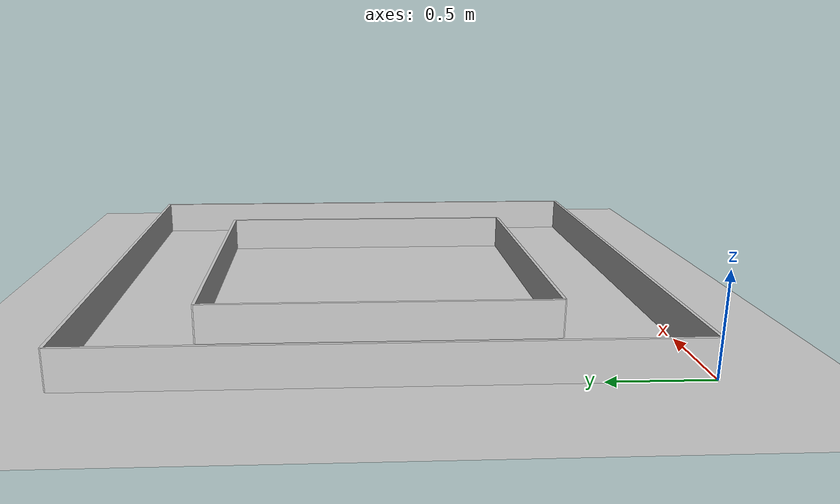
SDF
<?xml version="1.0"?>
<sdf version="1.6">
  <world name="default">
    <!-- Include the ground plane -->
    <include>
      <uri>model://ground_plane</uri>
    </include>

    <!-- Lighting -->
    <include>
      <uri>model://sun</uri>
    </include>

    <scene>
      <shadows>false</shadows>
    </scene>

    <gui fullscreen='0'>
      <camera name='user_camera'>
        <pose frame=''>0.319654 -0.235002 9.29441 0 1.5138 0.009599</pose>
        <view_controller>orbit</view_controller>
        <projection_type>perspective</projection_type>
      </camera>
    </gui>

    <physics type="ode">
      <real_time_update_rate>1000.0</real_time_update_rate>
      <max_step_size>0.001</max_step_size>
      <real_time_factor>1</real_time_factor>
      <ode>
        <solver>
          <type>quick</type>
          <iters>150</iters>
          <precon_iters>0</precon_iters>
          <sor>1.400000</sor>
          <use_dynamic_moi_rescaling>1</use_dynamic_moi_rescaling>
        </solver>
        <constraints>
          <cfm>0.00001</cfm>
          <erp>0.2</erp>
          <contact_max_correcting_vel>2000.000000</contact_max_correcting_vel>
          <contact_surface_layer>0.01000</contact_surface_layer>
        </constraints>
      </ode>
    </physics>

    <!-- Include the Square Path Model -->
    <include>
      <uri>model://square_path</uri>
    </include>
  </world>
</sdf>

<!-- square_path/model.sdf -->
<sdf version="1.6">
  <model name="square_path">
    <static>true</static>
    <link name="walls_link">
      <!-- Outer Walls -->
      <!-- Bottom Wall -->
      <collision name="bottom_wall_collision">
        <pose>1.44 0 0.1 0 0 0</pose>
        <geometry>
          <box>
            <size>2.88 0.017 0.2</size>
          </box>
        </geometry>
      </collision>
      <visual name="bottom_wall_visual">
        <pose>1.44 0 0.1 0 0 0</pose>
        <geometry>
          <box>
            <size>2.88 0.017 0.2</size>
          </box>
        </geometry>
        <material>
          <ambient>0.8 0.8 0.8 1</ambient>
        </material>
      </visual>

      <!-- Top Wall -->
      <collision name="top_wall_collision">
        <pose>1.44 2.88 0.1 0 0 0</pose>
        <geometry>
          <box>
            <size>2.88 0.017 0.2</size>
          </box>
        </geometry>
      </collision>
      <visual name="top_wall_visual">
        <pose>1.44 2.88 0.1 0 0 0</pose>
        <geometry>
          <box>
            <size>2.88 0.017 0.2</size>
          </box>
        </geometry>
        <material>
          <ambient>0.8 0.8 0.8 1</ambient>
        </material>
      </visual>

      <!-- Left Wall -->
      <collision name="left_wall_collision">
        <pose>0 1.44 0.1 0 0 0</pose>
        <geometry>
          <box>
            <size>0.017 2.88 0.2</size>
          </box>
        </geometry>
      </collision>
      <visual name="left_wall_visual">
        <pose>0 1.44 0.1 0 0 0</pose>
        <geometry>
          <box>
            <size>0.017 2.88 0.2</size>
          </box>
        </geometry>
        <material>
          <ambient>0.8 0.8 0.8 1</ambient>
        </material>
      </visual>

      <!-- Right Wall -->
      <collision name="right_wall_collision">
        <pose>2.88 1.44 0.1 0 0 0</pose>
        <geometry>
          <box>
            <size>0.017 2.88 0.2</size>
          </box>
        </geometry>
      </collision>
      <visual name="right_wall_visual">
        <pose>2.88 1.44 0.1 0 0 0</pose>
        <geometry>
          <box>
            <size>0.017 2.88 0.2</size>
          </box>
        </geometry>
        <material>
          <ambient>0.8 0.8 0.8 1</ambient>
        </material>
      </visual>

      <!-- Inner Walls -->
      <!-- Bottom Wall -->
      <collision name="inner_bottom_wall_collision">
        <pose>1.44 0.54 0.1 0 0 0</pose>
        <geometry>
          <box>
            <size>1.8 0.017 0.2</size>
          </box>
        </geometry>
      </collision>
      <visual name="inner_bottom_wall_visual">
        <pose>1.44 0.54 0.1 0 0 0</pose>
        <geometry>
          <box>
            <size>1.8 0.017 0.2</size>
          </box>
        </geometry>
        <material>
          <ambient>0.8 0.8 0.8 1</ambient>
        </material>
      </visual>

      <!-- Top Wall -->
      <collision name="inner_top_wall_collision">
        <pose>1.44 2.34 0.1 0 0 0</pose>
        <geometry>
          <box>
            <size>1.8 0.017 0.2</size>
          </box>
        </geometry>
      </collision>
      <visual name="inner_top_wall_visual">
        <pose>1.44 2.34 0.1 0 0 0</pose>
        <geometry>
          <box>
            <size>1.8 0.017 0.2</size>
          </box>
        </geometry>
        <material>
          <ambient>0.8 0.8 0.8 1</ambient>
        </material>
      </visual>

      <!-- Left Wall -->
      <collision name="inner_left_wall_collision">
        <pose>0.54 1.44 0.1 0 0 0</pose>
        <geometry>
          <box>
            <size>0.017 1.8 0.2</size>
          </box>
        </geometry>
      </collision>
      <visual name="inner_left_wall_visual">
        <pose>0.54 1.44 0.1 0 0 0</pose>
        <geometry>
          <box>
            <size>0.017 1.8 0.2</size>
          </box>
        </geometry>
        <material>
          <ambient>0.8 0.8 0.8 1</ambient>
        </material>
      </visual>

      <!-- Right Wall -->
      <collision name="inner_right_wall_collision">
        <pose>2.34 1.44 0.1 0 0 0</pose>
        <geometry>
          <box>
            <size>0.017 1.8 0.2</size>
          </box>
        </geometry>
      </collision>
      <visual name="inner_right_wall_visual">
        <pose>2.34 1.44 0.1 0 0 0</pose>
        <geometry>
          <box>
            <size>0.017 1.8 0.2</size>
          </box>
        </geometry>
        <material>
          <ambient>0.8 0.8 0.8 1</ambient>
        </material>
      </visual>
    </link>
  </model>
</sdf>
